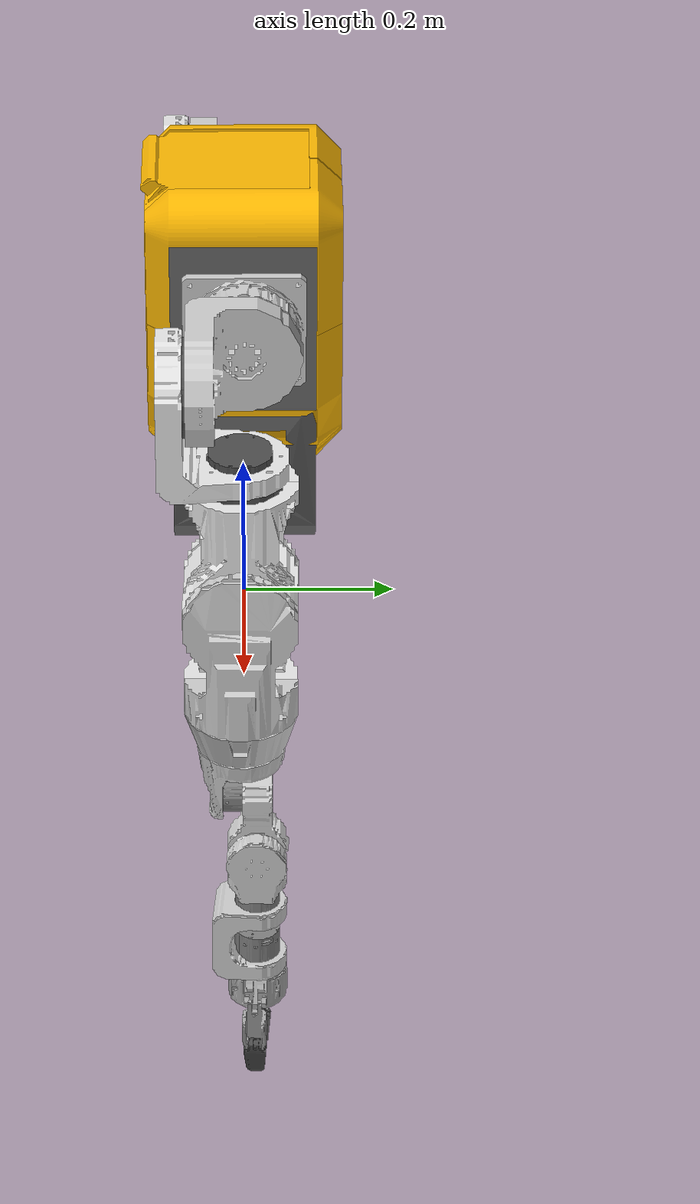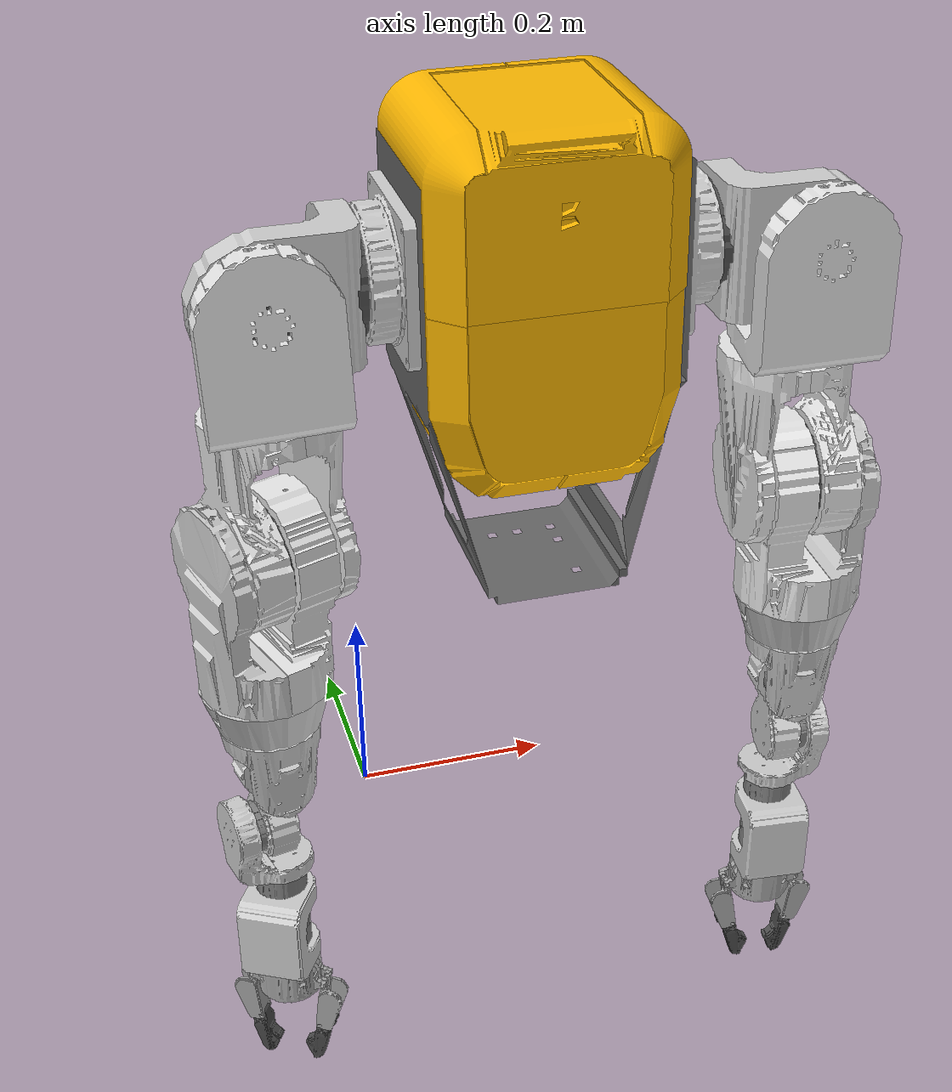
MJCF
<?xml version='1.0' encoding='utf-8'?>
<mujoco model="assembly_urdf_copy_1">
  <compiler angle="radian" meshdir="/home/mainak/Desktop/Robstride_Control_Gui/mujoco/1_build_scene/main_assembly/meshes/" />

  <asset>
    <mesh name="L_Ankle_Pitch_RS02" content_type="model/stl" file="L_Ankle_Pitch_RS02.stl" />
    <mesh name="LC4" content_type="model/stl" file="LC4.stl" />
    <mesh name="LE5" content_type="model/stl" file="LE5.stl" />
    <mesh name="LP1" content_type="model/stl" file="LP1.stl" />
    <mesh name="LP4" content_type="model/stl" file="LP4.stl" />
    <mesh name="LR2" content_type="model/stl" file="LR2.stl" />
    <mesh name="LW" content_type="model/stl" file="LW.stl" />
    <mesh name="LY3" content_type="model/stl" file="LY3.stl" />
    <mesh name="LY5" content_type="model/stl" file="LY5.stl" />
    <mesh name="palm_______________Cut_Extrude13" content_type="model/stl" file="palm_______________Cut_Extrude13.stl" />
    <mesh name="Part_1" content_type="model/stl" file="Part_1.stl" />
    <mesh name="Part_1_1" content_type="model/stl" file="Part_1_1.stl" />
    <mesh name="Part_1_2" content_type="model/stl" file="Part_1_2.stl" />
    <mesh name="Part_1_3" content_type="model/stl" file="Part_1_3.stl" />
    <mesh name="Part_1_4" content_type="model/stl" file="Part_1_4.stl" />
    <mesh name="Part_1_5" content_type="model/stl" file="Part_1_5.stl" />
    <mesh name="Part_2" content_type="model/stl" file="Part_2.stl" />
    <mesh name="Part_3" content_type="model/stl" file="Part_3.stl" />
    <mesh name="Part_4" content_type="model/stl" file="Part_4.stl" />
    <mesh name="Part_5" content_type="model/stl" file="Part_5.stl" />
    <mesh name="Part_6" content_type="model/stl" file="Part_6.stl" />
    <mesh name="Part_7" content_type="model/stl" file="Part_7.stl" />
    <mesh name="phalanx_1__Fillet13" content_type="model/stl" file="phalanx_1__Fillet13.stl" />
    <mesh name="phalanx_2_______________Fillet7" content_type="model/stl" file="phalanx_2_______________Fillet7.stl" />
    <mesh name="RS00_v1__RS00_v1" content_type="model/stl" file="RS00_v1__RS00_v1.stl" />
    <mesh name="RS03" content_type="model/stl" file="RS03.stl" />
    <mesh name="RS04" content_type="model/stl" file="RS04.stl" />
  </asset>

  <worldbody>
    <light pos="0 0 2" dir="0 0 -1" diffuse="0.8 0.8 0.8" /><geom name="floor" pos="0 0 -1.6" type="plane" size="2 2 0.1" rgba="0.9 0.9 0.9 1" /><body name="root">
      <body name="part_1_1" pos="0.196327 0.0934899 0.614391" quat="1 -9.65755e-10 -6.8114e-09 -2.09527e-09">
        <inertial pos="0 -0.0906123 -0.150514" quat="0.707105 0.00147363 -0.00147363 0.707105" mass="2.39653" diaginertia="0.0826947 0.0611181 0.0362176" />
        <geom type="mesh" contype="0" conaffinity="0" group="1" rgba="0.4 0.4 0.4 1" density="0" mesh="Part_1_1" />
        <body name="lp1" pos="-0.13 -0.025 0.0448067" quat="0.707105 0 0 -0.707108">
          <inertial pos="0.065 -0.0153716 -0.065" quat="0.707107 0 0 0.707107" mass="0.33206" diaginertia="0.00164506 0.000907785 0.000823593" />
          <geom pos="0.065 0 -0.065" quat="1 0 0 0" type="mesh" contype="0" conaffinity="0" group="1" rgba="0.8 0.8 0.8 1" density="0" mesh="LP1" />
          <body name="rs04" pos="0.065 -0.02 -0.0645" quat="0.499998 0.500002 0.5 -0.5">
            <inertial pos="0 0 0.0155742" quat="0.5 0.5 -0.5 0.5" mass="0.000514301" diaginertia="8.53451e-07 5.33504e-07 5.24397e-07" />
            <geom type="mesh" contype="0" conaffinity="0" group="1" rgba="0.301961 0.301961 0.301961 1" density="0" mesh="RS04" />
            <body name="lr2_1" pos="0 0 0.039" quat="9.38184e-07 -0.707108 9.38187e-07 0.707105">
              <inertial pos="-0.0316085 -0.0226563 0.000138528" quat="0.30628 0.30441 0.639725 0.635829" mass="0.751184" diaginertia="0.00314778 0.00238205 0.00211311" />
              <joint name="revolute_1" range="-1.0472 1.0472" actuatorfrcrange="-80 80" axis="1 0 0" />
              <geom pos="-0.015 0 0" quat="0.999995 -0.00305948 0 0" type="mesh" contype="0" conaffinity="0" group="1" rgba="0.8 0.8 0.8 1" density="0" mesh="LR2" />
              <body name="rs04_4" pos="-0.123122 -0.050145 -0.023541" quat="0.709266 0.704941 0 0">
                <inertial pos="0.0381631 0.0238448 0.0155742" quat="0.5 0.5 -0.5 0.5" mass="0.000514301" diaginertia="8.53451e-07 5.33504e-07 5.24397e-07" />
                <geom pos="0.0381631 0.0238448 0" quat="1 0 0 0" type="mesh" contype="0" conaffinity="0" group="1" rgba="0.301961 0.301961 0.301961 1" density="0" mesh="RS04" />
                <body name="ly3_1" pos="0.0381631 0.0238448 0.039" quat="0.707105 -0.707108 0 0">
                  <inertial pos="0.00194434 0.0117942 -0.0560275" quat="0.694185 0.110398 -0.134546 0.698438" mass="0.892462" diaginertia="0.00431779 0.00340489 0.00218431" />
                  <joint name="revolute_2" range="-0.227112 1.0472" actuatorfrcrange="-80 80" axis="0 1 0" />
                  <geom pos="0 0.015 0" quat="0.99985 0 -0.0173427 0" type="mesh" contype="0" conaffinity="0" group="1" rgba="0.901961 0.901961 0.901961 1" density="0" mesh="LY3" />
                  <body name="rs03" pos="-0.0364732 0.061 -0.102326" quat="0.694738 3.25406e-08 -0.719263 -3.25406e-08">
                    <inertial pos="-0.0145138 0.023717 -0.0399788" quat="0.999903 0.0100835 -0.00958832 -0.00103346" mass="0.000181196" diaginertia="1.67707e-07 1.34793e-07 1.31612e-07" />
                    <geom pos="0.078 -0.322809 -0.0400122" type="mesh" contype="0" conaffinity="0" group="1" rgba="0.301961 0.301961 0.301961 1" density="0" mesh="RS03" />
                    <body name="lp4_1" pos="-0.0395 0.0236912 -0.0400122" quat="0.707105 0 0.707108 0">
                      <inertial pos="-0.0365808 -0.0123361 -0.0652542" quat="0.982633 -0.0148754 0.0906546 0.161225" mass="0.603676" diaginertia="0.00375533 0.00330341 0.00118543" />
                      <joint name="revolute_3" range="-1.0472 1.0472" actuatorfrcrange="-40 40" />
                      <geom pos="0 0 -0.0125" quat="0.986806 0 0 0.161909" type="mesh" contype="0" conaffinity="0" group="1" rgba="0.901961 0.901961 0.901961 1" density="0" mesh="LP4" />
                      <body name="lc4" pos="0 0 -0.01265" quat="0.986806 0 0 0.161909">
                        <inertial pos="0.0389709 -9.0187e-07 -0.0780917" quat="0.999698 -1.99485e-05 0.0245688 1.57807e-06" mass="0.844645" diaginertia="0.00403974 0.00326209 0.000998211" />
                        <geom pos="0 0 0.00015" type="mesh" contype="0" conaffinity="0" group="1" rgba="0.901961 0.901961 0.901961 1" density="0" mesh="LC4" />
                      </body>
                      <body name="rs04_5" pos="-0.0455671 -0.0338347 -0.19338" quat="0.697776 -0.114487 0.697778 0.114487">
                        <inertial pos="-0.050406 0.0163779 0.0155742" quat="0.5 0.5 -0.5 0.5" mass="0.000514301" diaginertia="8.53451e-07 5.33504e-07 5.24397e-07" />
                        <geom pos="-0.050406 0.0163779 0" quat="1 0 0 0" type="mesh" contype="0" conaffinity="0" group="1" rgba="0.301961 0.301961 0.301961 1" density="0" mesh="RS04" />
                        <body name="le5" pos="-0.050406 0.0163779 0.039" quat="0.707105 0 0.707108 0">
                          <inertial pos="-0.0116655 0.00208964 0.0512249" quat="0.999624 -0.0203847 0.0183327 -0.000373891" mass="1.04221" diaginertia="0.00525848 0.00414693 0.00166934" />
                          <joint name="revolute_4" range="-1.00642 1.0472" actuatorfrcrange="-80 80" axis="1 0 0" />
                          <geom pos="-0.04 0 0" quat="0.0203849 0.999792 0 0" type="mesh" contype="0" conaffinity="0" group="1" rgba="0.901961 0.901961 0.901961 1" density="0" mesh="LE5" />
                          <body name="ly5_1" pos="0.0225 0.00621396 0.152319" quat="2.70466e-08 -1.32652e-06 -0.999792 0.0203849">
                            <inertial pos="-0.0443185 2.25113e-07 0.0934315" quat="0.999622 -6.4076e-06 -0.0274908 -1.09531e-06" mass="0.654515" diaginertia="0.00311504 0.00238881 0.000942926" />
                            <geom pos="-0.07 0 0.152446" type="mesh" contype="0" conaffinity="0" group="1" rgba="0.8 0.8 0.8 1" density="0" mesh="LY5" />
                          </body>
                          <body name="lw" pos="0.0225 0.0049911 0.122344" quat="2.70466e-08 -1.32652e-06 0.999792 -0.0203849">
                            <inertial pos="-0.000822949 3.98262e-12 -0.040464" quat="0.497404 0.497404 -0.502582 0.502582" mass="0.626251" diaginertia="0.00175169 0.00118938 0.00113208" />
                            <geom pos="-0.00192479 0 -0.03" quat="1 0 0 0" type="mesh" contype="0" conaffinity="0" group="1" rgba="0.8 0.8 0.8 1" density="0" mesh="LW" />
                            <body name="l_ankle_pitch_rs02" pos="-0.00192479 0 -0.065" quat="9.38184e-07 -0.707108 9.38187e-07 0.707105">
                              <inertial pos="0.00951291 -0.000455821 -0.000784322" quat="0.43381 0.900961 0.00886803 0.000554349" mass="6.06932e-05" diaginertia="4.21439e-08 3.20232e-08 3.12341e-08" />
                              <geom pos="0.145 0.553 -0.003" type="mesh" contype="0" conaffinity="0" group="1" rgba="0.972549 0.529412 0.00392157 1" density="0" mesh="L_Ankle_Pitch_RS02" />
                              <body name="part_1_6" pos="0.032 0 0" quat="9.38184e-07 0.707108 9.38187e-07 -0.707105">
                                <inertial pos="-0.00120973 -0.0106715 -0.0129064" quat="0.353372 0.586593 -0.656847 0.315577" mass="0.269208" diaginertia="0.000463496 0.000372045 0.000295827" />
                                <joint name="revolute_8" range="-1.0472 1.0472" actuatorfrcrange="-14 14" />
                                <geom pos="0 0 -0.01" quat="0.666092 0 0 -0.74587" type="mesh" contype="0" conaffinity="0" group="1" rgba="0.8 0.8 0.8 1" density="0" mesh="Part_1_4" />
                                <body name="rs00_v1__rs00_v1_6" pos="-0.00339982 -0.029991 -0.055" quat="-0.470998 -0.52741 -0.471 0.527408">
                                  <inertial pos="-0.0156544 0.0226106 -0.0509014" mass="5.13306e-07" diaginertia="0 0 0" />
                                  <geom pos="0.213 -0.0123508 -0.018" quat="1 0 0 0" type="mesh" contype="0" conaffinity="0" group="1" density="0" mesh="RS00_v1__RS00_v1" />
                                  <body name="part_1_3" pos="-1.4745e-07 -9.93862e-07 -0.052" quat="9.38184e-07 0.707108 9.38187e-07 -0.707105">
                                    <inertial pos="-0.000629716 -0.000159572 -0.0398837" quat="0.999759 -0.00278405 0.0214159 0.00405189" mass="0.260036" diaginertia="0.000585487 0.000581371 0.000131848" />
                                    <joint name="revolute_9" range="-1.0472 1.0472" actuatorfrcrange="-8 8" axis="-1 0 0" />
                                    <geom pos="-0.02 0 0" quat="0.719486 -0.694507 0 0" type="mesh" contype="0" conaffinity="0" group="1" rgba="0.8 0.8 0.8 1" density="0" mesh="Part_1_3" />
                                    <body name="rs00_v1__rs00_v1_2" pos="-0.0025 -0.00449291 -0.0852119" quat="0.491092 0.508752 0.508755 -0.491089">
                                      <inertial pos="-0.0156544 0.0226106 -0.0509014" mass="5.13306e-07" diaginertia="0 0 0" />
                                      <geom pos="0.213 -0.0123508 -0.018" quat="1 0 0 0" type="mesh" contype="0" conaffinity="0" group="1" density="0" mesh="RS00_v1__RS00_v1" />
                                      <body name="part_1_2" pos="-1.4745e-07 -9.93862e-07 -0.052" quat="-0.499999 0.500001 0.500001 0.499999">
                                        <inertial pos="0.0186942 0.0284543 -0.00124846" quat="0.681119 0.65189 -0.240819 -0.230484" mass="0.192224" diaginertia="0.000296195 0.000278129 0.000132512" />
                                        <joint name="revolute_5" range="-1.0472 1.0472" actuatorfrcrange="-8 8" axis="1 0 0" />
                                        <geom pos="-0.009 0.036668 -0.00160885" quat="0.0219246 0.99976 0 0" type="mesh" contype="0" conaffinity="0" group="1" rgba="0.8 0.8 0.8 1" density="0" mesh="Part_1_2" />
                                        <body name="rs00_v1__rs00_v1_7" pos="0.0478375 0.0548341 -0.00240591" quat="9.58527e-07 -9.17394e-07 0.691436 -0.722438">
                                          <inertial pos="-0.0156544 0.0226106 -0.0509014" mass="5.13306e-07" diaginertia="0 0 0" />
                                          <geom pos="0.213 -0.0123508 -0.018" quat="1 0 0 0" type="mesh" contype="0" conaffinity="0" group="1" density="0" mesh="RS00_v1__RS00_v1" />
                                          <body name="part_1" pos="-1.28409e-07 -6.49752e-07 -0.052" quat="1.76357e-12 1.32679e-06 1 1.32679e-06">
                                            <inertial pos="-0.0166668 0.018261 0.036611" quat="0.93221 -0.0170942 -0.00662807 0.361453" mass="0.398612" diaginertia="0.000685407 0.000643531 0.000441164" />
                                            <joint name="revolute_6" range="-1.0472 0.722334" actuatorfrcrange="-8 8" axis="0 0 -1" />
                                            <geom pos="-0.0230911 0.0252997 -0.015" quat="0.361514 0 0 -0.932367" type="mesh" contype="0" conaffinity="0" group="1" rgba="0.8 0.8 0.8 1" density="0" mesh="Part_1" />
                                            <body name="rs00_v1__rs00_v1_5" pos="0 0 0.08" quat="5.35565e-07 0.403653 0.914912 1.2139e-06">
                                              <inertial pos="-0.0156545 0.0226111 9.85997e-05" mass="5.13306e-07" diaginertia="0 0 0" />
                                              <geom pos="0.213 -0.0123503 0.033" quat="1 0 0 0" type="mesh" contype="0" conaffinity="0" group="1" density="0" mesh="RS00_v1__RS00_v1" />
                                            </body>
                                            <body name="palm_______________cut_extrude13_1" pos="0 0 0.09" quat="0.403653 0 0 0.914912">
                                              <inertial pos="9.56177e-05 -8.68507e-09 0.0279067" quat="-1.56576e-06 0.708046 1.5616e-06 0.706166" mass="0.183717" diaginertia="0.00014602 0.000118867 0.000100305" />
                                              <geom pos="0 0 0.0373" quat="1 0 0 0" type="mesh" contype="0" conaffinity="0" group="1" rgba="0.647059 0.647059 0.647059 1" density="0" mesh="palm_______________Cut_Extrude13" />
                                              <body name="phalanx_1__fillet13_2" pos="0.008 -0.0439922 0.03105" quat="-0.467965 0.530102 -0.530103 -0.467965">
                                                <inertial pos="-0.0374685 0.008 -0.00486308" quat="1.03267e-06 0.709612 4.07914e-06 0.704593" mass="0.0259578" diaginertia="1.02337e-05 8.71607e-06 3.96433e-06" />
                                                <joint name="revolute_10" range="-0.050173 1.0472" actuatorfrcrange="-2 2" axis="0 -1 0" />
                                                <geom pos="-0.0106143 -0.007 0" quat="1 0 0 0" type="mesh" contype="0" conaffinity="0" group="1" rgba="0.647059 0.647059 0.647059 1" density="0" mesh="phalanx_1__Fillet13" />
                                                <body name="phalanx_2_______________fillet7" pos="-0.0679934 0 -6.61916e-06" quat="0.707105 0 0 0.707108">
                                                  <inertial pos="0.00799995 0.0263849 -0.00142567" quat="0.453144 0.542816 -0.542831 0.453152" mass="0.029268" diaginertia="9.32376e-06 8.88105e-06 2.08558e-06" />
                                                  <geom pos="0.008 0.0619998 0.0045" quat="1 0 0 0" type="mesh" contype="0" conaffinity="0" group="1" rgba="0.301961 0.301961 0.301961 1" density="0" mesh="phalanx_2_______________Fillet7" />
                                                </body>
                                              </body>
                                              <body name="phalanx_1__fillet13" pos="-0.008 0.0439922 0.03105" quat="0.499998 0.500002 0.5 -0.5">
                                                <inertial pos="-0.0377628 0.008 -0.00123061" quat="8.34735e-07 0.742767 4.12419e-06 0.66955" mass="0.0259578" diaginertia="1.02337e-05 8.71607e-06 3.96433e-06" />
                                                <joint name="revolute_11" range="-0.07804 1.0472" actuatorfrcrange="-2 2" axis="0 -1 0" />
                                                <geom pos="-0.0105649 -0.007 0.00102262" quat="0.998836 0 0.0482278 0" type="mesh" contype="0" conaffinity="0" group="1" rgba="0.647059 0.647059 0.647059 1" density="0" mesh="phalanx_1__Fillet13" />
                                                <body name="phalanx_2_______________fillet7_2" pos="-0.0676777 0.016 0.00654413" quat="0.706283 0.0341022 0.0341023 0.706285">
                                                  <inertial pos="-0.00800005 0.0263849 -0.00142567" quat="0.453144 0.542816 -0.542831 0.453152" mass="0.029268" diaginertia="9.32376e-06 8.88105e-06 2.08558e-06" />
                                                  <geom pos="-0.008 0.0619998 0.0045" quat="1 0 0 0" type="mesh" contype="0" conaffinity="0" group="1" rgba="0.301961 0.301961 0.301961 1" density="0" mesh="phalanx_2_______________Fillet7" />
                                                </body>
                                              </body>
                                            </body>
                                          </body>
                                        </body>
                                      </body>
                                    </body>
                                  </body>
                                </body>
                              </body>
                            </body>
                          </body>
                        </body>
                      </body>
                    </body>
                  </body>
                </body>
              </body>
            </body>
          </body>
        </body>
        <body name="part_3" pos="-0.128 -0.025 0.0448067">
          <inertial pos="0.0325442 -0.0357387 0.0177958" quat="0.700427 0.698003 -0.046606 -0.141498" mass="0.918225" diaginertia="0.00833635 0.00652432 0.00316904" />
          <geom pos="0.127 0.025 -0.0448067" quat="1 0 0 0" type="mesh" contype="0" conaffinity="0" group="1" rgba="0.980392 0.713726 0.00392157 1" density="0" mesh="Part_3" />
          <body name="part_6" pos="0.128 0.015 0.0916835">
            <inertial pos="6.68154e-07 -0.147881 -0.0447681" quat="0.298373 0.641076 -0.641065 0.29838" mass="0.787215" diaginertia="0.00634692 0.00547049 0.00299432" />
            <geom pos="0 0.01 -0.13649" quat="1 0 0 0" type="mesh" contype="0" conaffinity="0" group="1" rgba="0.980392 0.713726 0.00392157 1" density="0" mesh="Part_6" />
            <body name="part_7" pos="0.0125 -0.195 -0.18">
              <inertial pos="-0.0125 0 -0.0712613" quat="0.5 0.5 0.5 0.5" mass="0.388298" diaginertia="0.00200061 0.00112215 0.000884969" />
              <geom pos="-0.0125 0.205 0.0450098" quat="1 0 0 0" type="mesh" contype="0" conaffinity="0" group="1" rgba="0.980392 0.713726 0.00392157 1" density="0" mesh="Part_7" />
            </body>
          </body>
        </body>
        <body name="part_5" pos="0.128 -0.025 0.0448067">
          <inertial pos="-0.0316764 -0.0365279 0.0180177" quat="0.699117 0.700232 0.040658 0.13877" mass="0.90985" diaginertia="0.00822488 0.00638294 0.00311173" />
          <geom pos="-0.127 0.025 -0.0448067" quat="1 0 0 0" type="mesh" contype="0" conaffinity="0" group="1" rgba="0.980392 0.713726 0.00392157 1" density="0" mesh="Part_5" />
        </body>
        <body name="part_4" pos="0.128 -0.025 -0.0851933">
          <inertial pos="-0.0445439 -0.0446849 -0.066901" quat="0.60362 0.769046 0.186663 -0.0967895" mass="1.1526" diaginertia="0.0120863 0.0080979 0.00586776" />
          <geom pos="-0.127 0.025 0.0851933" quat="1 0 0 0" type="mesh" contype="0" conaffinity="0" group="1" rgba="0.980392 0.713726 0.00392157 1" density="0" mesh="Part_4" />
        </body>
        <body name="part_2" pos="-0.128 -0.025 -0.0851933">
          <inertial pos="0.0452796 -0.0438376 -0.0665781" quat="0.605108 0.767291 -0.191612 0.0916193" mass="1.163" diaginertia="0.0122293 0.00827456 0.005947" />
          <geom pos="0.127 0.025 0.0851933" quat="1 0 0 0" type="mesh" contype="0" conaffinity="0" group="1" rgba="0.980392 0.713726 0.00392157 1" density="0" mesh="Part_2" />
        </body>
        <body name="lp1_1" pos="0.13 -0.025 0.0448067" quat="0.707105 0 0 0.707108">
          <inertial pos="-0.065 -0.0153716 -0.065" quat="0.707107 0 0 0.707107" mass="0.33206" diaginertia="0.00164506 0.000907785 0.000823593" />
          <geom pos="-0.065 0 -0.065" quat="1 0 0 0" type="mesh" contype="0" conaffinity="0" group="1" rgba="0.8 0.8 0.8 1" density="0" mesh="LP1" />
          <body name="rs04_2" pos="-0.065 -0.02 -0.065" quat="0.499998 0.500002 0.5 -0.5">
            <inertial pos="0 0 0.0155742" quat="0.5 0.5 -0.5 0.5" mass="0.000514301" diaginertia="8.53451e-07 5.33504e-07 5.24397e-07" />
            <geom type="mesh" contype="0" conaffinity="0" group="1" rgba="0.301961 0.301961 0.301961 1" density="0" mesh="RS04" />
            <body name="lr2" pos="0 0 0.04" quat="0.707105 0 0.707108 0">
              <inertial pos="-0.0316085 -0.0226563 9.75013e-08" quat="0.305348 0.305347 0.637776 0.637783" mass="0.751184" diaginertia="0.00314779 0.00238204 0.00211311" />
              <joint name="revolute_7" range="-1.0472 1.0472" actuatorfrcrange="-80 80" axis="1 0 0" />
              <geom pos="-0.015 4.04037e-07 2.04107e-07" quat="1 0 0 0" type="mesh" contype="0" conaffinity="0" group="1" rgba="0.8 0.8 0.8 1" density="0" mesh="LR2" />
              <body name="rs04_3" pos="-0.085 -0.0499996 2.04107e-07" quat="9.38184e-07 -9.38187e-07 -0.707108 0.707105">
                <inertial pos="0 0 0.0155742" quat="0.5 0.5 -0.5 0.5" mass="0.000514301" diaginertia="8.53451e-07 5.33504e-07 5.24397e-07" />
                <geom type="mesh" contype="0" conaffinity="0" group="1" rgba="0.301961 0.301961 0.301961 1" density="0" mesh="RS04" />
                <body name="ly3" pos="0 0 0.04" quat="0.707105 -0.707108 0 0">
                  <inertial pos="-0.000300214 0.0117942 -0.0560604" quat="0.69674 0.124359 -0.120621 0.696088" mass="0.892462" diaginertia="0.00431779 0.00340489 0.00218431" />
                  <joint name="revolute_12" range="-1.0472 0.256442" actuatorfrcrange="-80 80" axis="0 1 0" />
                  <geom pos="0 0.015 0" quat="0.999996 0 0.00267871 0" type="mesh" contype="0" conaffinity="0" group="1" rgba="0.901961 0.901961 0.901961 1" density="0" mesh="LY3" />
                  <body name="rs03_1" pos="-0.000541098 0.085 -0.100999" quat="0.708998 0 -0.705211 0">
                    <inertial pos="-0.0145138 2.7501e-05 -0.00116879" quat="0.999903 0.0100835 -0.00958832 -0.00103346" mass="0.000181196" diaginertia="1.67707e-07 1.34793e-07 1.31612e-07" />
                    <geom pos="0.078 -0.346498 -0.00120226" type="mesh" contype="0" conaffinity="0" group="1" rgba="0.301961 0.301961 0.301961 1" density="0" mesh="RS03" />
                    <body name="lp4" pos="-0.042 1.67444e-06 -0.00120226" quat="0.707105 0 0.707108 0">
                      <inertial pos="0.0385969 -0.000782386 -0.0652542" quat="0.99572 -0.000929818 -0.0918622 -0.0100904" mass="0.603676" diaginertia="0.00375533 0.00330341 0.00118543" />
                      <joint name="revolute_13" range="-1.0472 0.002816" actuatorfrcrange="-40 40" />
                      <geom pos="0 0 -0.0125" quat="0.0101362 0 0 0.999949" type="mesh" contype="0" conaffinity="0" group="1" rgba="0.901961 0.901961 0.901961 1" density="0" mesh="LP4" />
                      <body name="lc4_1" pos="0.00125156 0.0617373 0" quat="0.0101362 0 0 0.999949">
                        <inertial pos="0.0386752 0.0617483 -0.0907417" quat="0.999698 -1.99485e-05 0.0245688 1.57807e-06" mass="0.844645" diaginertia="0.00403974 0.00326209 0.000998211" />
                        <geom pos="-0.00029563 0.0617492 -0.0125" type="mesh" contype="0" conaffinity="0" group="1" rgba="0.901961 0.901961 0.901961 1" density="0" mesh="LC4" />
                      </body>
                      <body name="rs04_1" pos="0.0539787 -0.00109428 -0.1425" quat="-0.00716545 0.707072 -0.00716548 -0.707069">
                        <inertial pos="0 0 0.0155742" quat="0.5 0.5 -0.5 0.5" mass="0.000514301" diaginertia="8.53451e-07 5.33504e-07 5.24397e-07" />
                        <geom type="mesh" contype="0" conaffinity="0" group="1" rgba="0.301961 0.301961 0.301961 1" density="0" mesh="RS04" />
                        <body name="le5_1" pos="0 0 0.04" quat="9.38184e-07 0.707108 9.38187e-07 -0.707105">
                          <inertial pos="-0.0116655 -4.14004e-05 -0.0512675" quat="0.999832 -0.000407718 -0.0183364 7.5339e-06" mass="1.04221" diaginertia="0.00525848 0.00414693 0.00166934" />
                          <joint name="revolute_14" range="-1.0472 1.0472" actuatorfrcrange="-80 80" axis="1 0 0" />
                          <geom pos="-0.04 0 0" quat="1 -0.000404901 0 0" type="mesh" contype="0" conaffinity="0" group="1" rgba="0.901961 0.901961 0.901961 1" density="0" mesh="LE5" />
                          <body name="ly5" pos="0.03 0.049506 -0.112486" quat="1.32679e-06 5.37221e-10 0.000404901 1">
                            <inertial pos="-0.0363185 0.0495416 0.0534315" quat="0.999622 -6.4076e-06 -0.0274908 -1.09531e-06" mass="0.654515" diaginertia="0.00311504 0.00238881 0.000942926" />
                            <geom pos="-0.062 0.0495414 0.112446" type="mesh" contype="0" conaffinity="0" group="1" rgba="0.8 0.8 0.8 1" density="0" mesh="LY5" />
                          </body>
                          <body name="lw_1" pos="0.0225 -0.000123451 -0.152446" quat="1.32679e-06 5.37221e-10 -0.000404901 -1">
                            <inertial pos="0.00110184 3.98263e-12 -0.010464" quat="0.497404 0.497404 -0.502582 0.502582" mass="0.626251" diaginertia="0.00175169 0.00118938 0.00113208" />
                            <geom type="mesh" contype="0" conaffinity="0" group="1" rgba="0.8 0.8 0.8 1" density="0" mesh="LW" />
                            <body name="l_ankle_pitch_rs02_1" pos="0 0 -0.035" quat="0.707105 0 0.707108 0">
                              <inertial pos="0.00951291 -0.000455821 -0.000784322" quat="0.43381 0.900961 0.00886803 0.000554349" mass="6.06932e-05" diaginertia="4.21439e-08 3.20232e-08 3.12341e-08" />
                              <geom pos="0.145 0.553 -0.003" type="mesh" contype="0" conaffinity="0" group="1" rgba="0.972549 0.529412 0.00392157 1" density="0" mesh="L_Ankle_Pitch_RS02" />
                              <body name="part_1_8" pos="0.032 0 0" quat="9.38184e-07 0.707108 9.38187e-07 -0.707105">
                                <inertial pos="-6.59565e-05 -0.0107396 -0.0129064" quat="0.336035 0.620797 -0.624621 0.333978" mass="0.269208" diaginertia="0.000463496 0.000372045 0.000295827" />
                                <joint name="revolute_15" range="-1.0472 1.0472" actuatorfrcrange="-14 14" />
                                <geom pos="0 0 -0.01" quat="0.704931 0 0 -0.709276" type="mesh" contype="0" conaffinity="0" group="1" rgba="0.8 0.8 0.8 1" density="0" mesh="Part_1_4" />
                                <body name="rs00_v1__rs00_v1_4" pos="-0.000185364 -0.0301825 -0.055" quat="0.707102 0.707105 -0.0021713 -0.00217129">
                                  <inertial pos="-0.0156544 0.0226106 -0.0509014" mass="5.13306e-07" diaginertia="0 0 0" />
                                  <geom pos="0.213 -0.0123508 -0.018" quat="1 0 0 0" type="mesh" contype="0" conaffinity="0" group="1" density="0" mesh="RS00_v1__RS00_v1" />
                                  <body name="part_1_7" pos="-1.4745e-07 -9.93862e-07 -0.052" quat="0.499998 -0.500002 0.5 0.5">
                                    <inertial pos="-0.000629716 0.0021163 -0.0398278" quat="0.999389 0.0273176 0.0215086 -0.00352446" mass="0.260036" diaginertia="0.000585487 0.00058137 0.000131848" />
                                    <joint name="revolute_16" range="-1.0472 1.0472" actuatorfrcrange="-8 8" axis="-1 0 0" />
                                    <geom pos="-0.02 0 0" quat="0.711954 -0.702226 0 0" type="mesh" contype="0" conaffinity="0" group="1" rgba="0.8 0.8 0.8 1" density="0" mesh="Part_1_5" />
                                    <body name="rs00_v1__rs00_v1_1" pos="-0.0025 0.00866849 -0.0848888" quat="0.503426 -0.49655 -0.496548 -0.503428">
                                      <inertial pos="-0.0156544 0.0226106 -0.0509014" mass="5.13306e-07" diaginertia="0 0 0" />
                                      <geom pos="0.213 -0.0123508 -0.018" quat="1 0 0 0" type="mesh" contype="0" conaffinity="0" group="1" density="0" mesh="RS00_v1__RS00_v1" />
                                      <body name="part_1_5" pos="-1.4745e-07 -9.93862e-07 -0.052" quat="0.707105 0 -0.707108 0">
                                        <inertial pos="0.0186942 -0.000110585 0.0284814" quat="0.942804 0.0018303 0.333341 0.000647087" mass="0.192224" diaginertia="0.000296195 0.000278128 0.000132512" />
                                        <joint name="revolute_17" range="-1.0472 1.0472" actuatorfrcrange="-8 8" axis="1 0 0" />
                                        <geom pos="-0.009 -0.000142506 0.036703" quat="0.708479 -0.705731 0 0" type="mesh" contype="0" conaffinity="0" group="1" rgba="0.8 0.8 0.8 1" density="0" mesh="Part_1_2" />
                                        <body name="rs00_v1__rs00_v1_3" pos="0.048 -0.000213107 0.0548864" quat="2.57574e-09 1.32679e-06 -0.999998 -0.00194133">
                                          <inertial pos="-0.0156544 0.0226106 -0.0509014" mass="5.13306e-07" diaginertia="0 0 0" />
                                          <geom pos="0.213 -0.0123508 -0.018" quat="1 0 0 0" type="mesh" contype="0" conaffinity="0" group="1" density="0" mesh="RS00_v1__RS00_v1" />
                                          <body name="part_1_4" pos="-1.4745e-07 -9.93862e-07 -0.052" quat="1.32679e-06 -1 0 0">
                                            <inertial pos="-0.00130573 0.0246889 0.036611" quat="0.999483 -0.0183278 -0.0004843 0.0264126" mass="0.398612" diaginertia="0.000685407 0.000643531 0.000441164" />
                                            <joint name="revolute_18" range="-1.0472 0.035385" actuatorfrcrange="-8 8" axis="0 0 -1" />
                                            <geom pos="-0.00180903 0.0342053 -0.015" quat="0.0264183 0 0 -0.999651" type="mesh" contype="0" conaffinity="0" group="1" rgba="0.8 0.8 0.8 1" density="0" mesh="Part_1" />
                                            <body name="rs00_v1__rs00_v1" pos="0 0 0.08" quat="3.50516e-08 0.0264183 -0.999651 -1.32633e-06">
                                              <inertial pos="-0.0156545 0.0226111 9.85997e-05" mass="5.13306e-07" diaginertia="0 0 0" />
                                              <geom pos="0.213 -0.0123503 0.033" quat="1 0 0 0" type="mesh" contype="0" conaffinity="0" group="1" density="0" mesh="RS00_v1__RS00_v1" />
                                            </body>
                                            <body name="palm_______________cut_extrude13" pos="0 0 0.09" quat="0.725538 0 0 -0.688182">
                                              <inertial pos="9.56177e-05 -8.68507e-09 0.0279067" quat="-1.56576e-06 0.708046 1.5616e-06 0.706166" mass="0.183717" diaginertia="0.00014602 0.000118867 0.000100305" />
                                              <geom pos="0 0 0.0373" quat="1 0 0 0" type="mesh" contype="0" conaffinity="0" group="1" rgba="0.647059 0.647059 0.647059 1" density="0" mesh="palm_______________Cut_Extrude13" />
                                              <body name="phalanx_1__fillet13_1" pos="-0.008 0.0439922 0.03105" quat="9.38184e-07 0.707105 0.707108 9.38187e-07">
                                                <inertial pos="5.66138e-05 0.008 -0.0377828" quat="0.997734 -2.3802e-06 0.0672835 -3.46997e-06" mass="0.0259578" diaginertia="1.02337e-05 8.71607e-06 3.96434e-06" />
                                                <joint name="revolute_19" range="-0.046962 1.0472" actuatorfrcrange="-2 2" axis="0 -1 0" />
                                                <geom pos="-0.00135041 -0.007 -0.010528" quat="0.75074 0 -0.660598 0" type="mesh" contype="0" conaffinity="0" group="1" rgba="0.647059 0.647059 0.647059 1" density="0" mesh="phalanx_1__Fillet13" />
                                                <body name="phalanx_2_______________fillet7_1" pos="-0.00864392 0.016 -0.0674417" quat="0.530852 -0.467112 -0.467114 0.530854">
                                                  <inertial pos="-0.00800005 0.0263849 -0.00142567" quat="0.453144 0.542816 -0.542831 0.453152" mass="0.029268" diaginertia="9.32376e-06 8.88105e-06 2.08558e-06" />
                                                  <geom pos="-0.008 0.0619998 0.0045" quat="1 0 0 0" type="mesh" contype="0" conaffinity="0" group="1" rgba="0.301961 0.301961 0.301961 1" density="0" mesh="phalanx_2_______________Fillet7" />
                                                </body>
                                              </body>
                                              <body name="phalanx_1__fillet13_3" pos="-0.008 -0.0439922 0.03105" quat="0.707105 0 0 0.707108">
                                                <inertial pos="0.00171714 -0.008 0.0377438" quat="0.995879 2.46103e-06 0.0906911 3.41322e-06" mass="0.0259578" diaginertia="1.02337e-05 8.71607e-06 3.96433e-06" />
                                                <joint name="revolute_20" range="-1.0472 0" actuatorfrcrange="-2 2" axis="0 1 0" />
                                                <geom pos="0.00184315 -0.023 0.010453" quat="0.642786 1.6354e-07 0.766046 1.6354e-07" type="mesh" contype="0" conaffinity="0" group="1" rgba="0.647059 0.647059 0.647059 1" density="0" mesh="phalanx_1__Fillet13" />
                                                <body name="phalanx_2_______________fillet7_3" pos="0.0118004 0 0.0669616" quat="0.454518 0.541674 0.541676 0.45452">
                                                  <inertial pos="-0.00800005 0.0263849 -0.00142567" quat="0.453144 0.542816 -0.542831 0.453152" mass="0.029268" diaginertia="9.32376e-06 8.88105e-06 2.08558e-06" />
                                                  <geom pos="-0.008 0.0619998 0.0045" quat="1 0 0 0" type="mesh" contype="0" conaffinity="0" group="1" rgba="0.301961 0.301961 0.301961 1" density="0" mesh="phalanx_2_______________Fillet7" />
                                                </body>
                                              </body>
                                            </body>
                                          </body>
                                        </body>
                                      </body>
                                    </body>
                                  </body>
                                </body>
                              </body>
                            </body>
                          </body>
                        </body>
                      </body>
                    </body>
                  </body>
                </body>
              </body>
            </body>
          </body>
        </body>
      </body>
    </body>
  </worldbody>
  <equality>
    <joint joint1="revolute_11" joint2="revolute_10"
           polycoef="0 1 0 0 0"
           solref="0.004 1" solimp="0.99 0.9999 0.0001 0.5 2"/>
    <joint joint1="revolute_20" joint2="revolute_19"
           polycoef="0 -1 0 0 0"
           solref="0.004 1" solimp="0.99 0.9999 0.0001 0.5 2"/>
  </equality>
<actuator><position name="revolute_1_act" joint="revolute_1" kp="463.5" dampratio="1" ctrlrange="-1.0472 1.0472" /><position name="revolute_2_act" joint="revolute_2" kp="461.9" dampratio="1" ctrlrange="-0.227112 1.0472" /><position name="revolute_3_act" joint="revolute_3" kp="10" dampratio="1" ctrlrange="-1.0472 1.0472" /><position name="revolute_4_act" joint="revolute_4" kp="125.1" dampratio="1" ctrlrange="-1.00642 1.0472" /><position name="revolute_8_act" joint="revolute_8" kp="10" dampratio="1" ctrlrange="-1.0472 1.0472" /><position name="revolute_9_act" joint="revolute_9" kp="23.66" dampratio="1" ctrlrange="-1.0472 1.0472" /><position name="revolute_5_act" joint="revolute_5" kp="11.45" dampratio="1" ctrlrange="-1.0472 1.0472" /><position name="revolute_6_act" joint="revolute_6" kp="10" dampratio="1" ctrlrange="-1.0472 0.722334" /><position name="revolute_10_act" joint="revolute_10" kp="10" dampratio="1" ctrlrange="-0.050173 1.0472" /><position name="revolute_11_act" joint="revolute_11" kp="10" dampratio="1" ctrlrange="-0.07804 1.0472" /><position name="revolute_7_act" joint="revolute_7" kp="466.6" dampratio="1" ctrlrange="-1.0472 1.0472" /><position name="revolute_12_act" joint="revolute_12" kp="465.7" dampratio="1" ctrlrange="-1.0472 0.256442" /><position name="revolute_13_act" joint="revolute_13" kp="10" dampratio="1" ctrlrange="-1.0472 0.002816" /><position name="revolute_14_act" joint="revolute_14" kp="125.4" dampratio="1" ctrlrange="-1.0472 1.0472" /><position name="revolute_15_act" joint="revolute_15" kp="10" dampratio="1" ctrlrange="-1.0472 1.0472" /><position name="revolute_16_act" joint="revolute_16" kp="23.72" dampratio="1" ctrlrange="-1.0472 1.0472" /><position name="revolute_17_act" joint="revolute_17" kp="11.47" dampratio="1" ctrlrange="-1.0472 1.0472" /><position name="revolute_18_act" joint="revolute_18" kp="10" dampratio="1" ctrlrange="-1.0472 0.035385" /><position name="revolute_19_act" joint="revolute_19" kp="10" dampratio="1" ctrlrange="-0.046962 1.0472" /><position name="revolute_20_act" joint="revolute_20" kp="10" dampratio="1" ctrlrange="-1.0472 0" /></actuator></mujoco>
